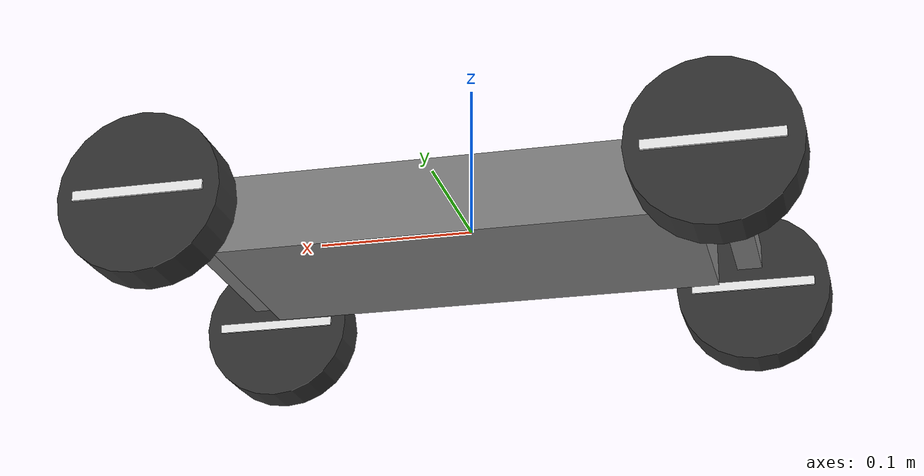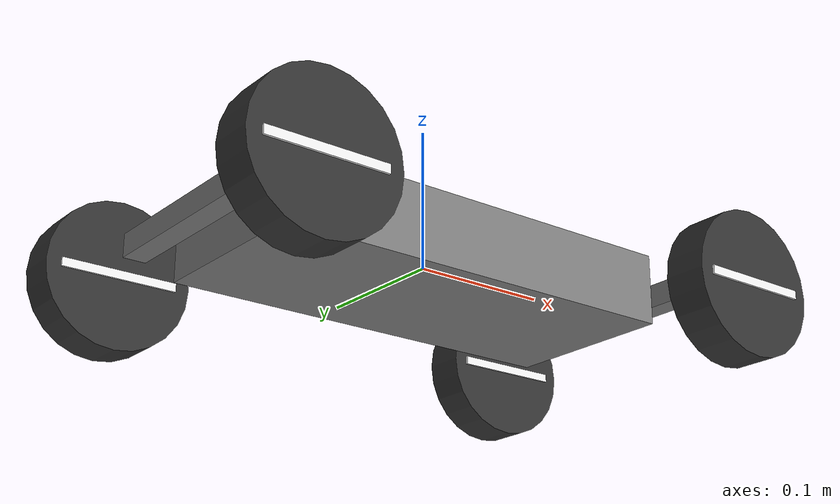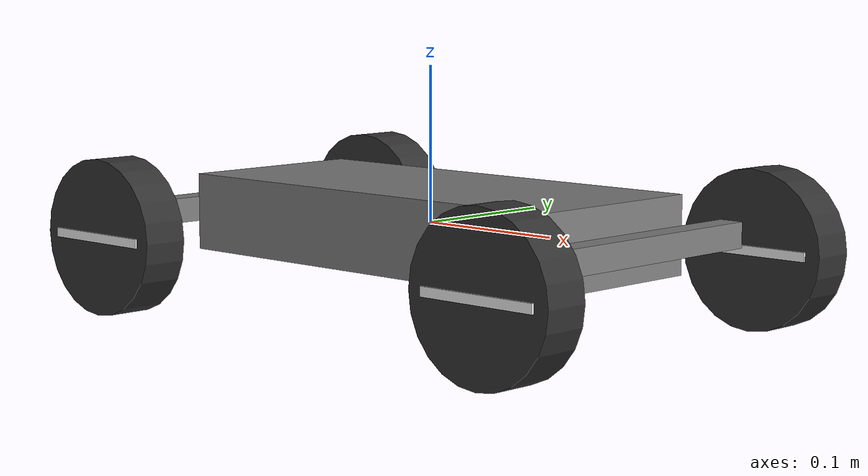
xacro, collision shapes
<?xml version="1.0"?>
<robot name="carbot" xmlns:xacro="http://wiki.ros.org/xacro">

    <xacro:property name="car_length" value="0.3"/>
    <xacro:property name="car_width" value="0.13"/>
    <xacro:property name="car_height" value="0.05"/>
    <xacro:property name="chassis_mass" value="2.0"/>

    <!-- turning to left -->
    <xacro:property name="min_steer" value="-0.52"/>
    <!-- turning to right -->
    <xacro:property name="max_steer" value="0.52"/>

    <xacro:property name="front_axle_width" value="0.18"/>
    <xacro:property name="back_axle_width" value="0.17"/>
    <xacro:property name="axle_mass" value="0.1"/>

    <xacro:property name="wheel_width" value="0.03"/>
    <xacro:property name="wheel_radius" value="0.051"/>
    <xacro:property name="wheel_gape" value="0.02"/>
    <xacro:property name="wheel_mass" value="0.2"/>
    <!-- TODO(lwalter) pass these in as args -->

    <xacro:include filename="$(find carbot_description)/urdf/carbot.gazebo"/>

    <!-- don't use macro names that are the same as other key names
      like 'box', 'cylinder', etc. otherwise get Invalid parameter "size"
    -->
    <xacro:macro name="block" params="name length width height mass r:=0.5 b:=0.5 g:=0.5">
        <link name="${name}">
            <visual>
                <origin xyz="0 0 0" rpy="0 0 0"/>
                <geometry>
                    <box size="${length} ${width} ${height}"/>
                </geometry>
                <material name="${name}_gray">
                    <color rgba="${r} ${g} ${b} 1"/>
                </material>
            </visual>
            <collision>
                <origin xyz="0 0 0" rpy="0 0 0"/>
                <geometry>
                    <box size="${length} ${width} ${height}"/>
                </geometry>
            </collision>
            <inertial>
                <origin xyz="0 0 0" rpy="0 0 0"/>
                <mass value="${mass}"/>
                <inertia
                        ixx="${mass / 12.0 * (width * width + height * height)}" ixy="0.0" ixz="0.0"
                        iyy="${mass / 12.0 * (length * length + height * height)}" iyz="0.0"
                        izz="${mass / 12.0 * (length * length + width * width)}"/>
            </inertial>
        </link>
    </xacro:macro>

    <!-- a wheel that rotates around the y axis, rolls forward toward the x axis -->
    <!--origin xyz="${length/2} ${width/2} ${height/2}" /-->
    <xacro:macro name="wheel" params="name width radius mass">
        <link name="${name}">
            <visual>
                <origin xyz="0 0 0" rpy="${pi/2} 0 0"/>
                <geometry>
                    <cylinder length="${width}" radius="${radius}"/>
                </geometry>
                <material name="${name}_black">
                    <color rgba="0.2 0.2 0.2 1"/>
                </material>
            </visual>
            <collision>
                <origin xyz="0 0 0" rpy="${pi/2} 0 0"/>
                <geometry>
                    <cylinder length="${width}" radius="${radius}"/>
                </geometry>
            </collision>
            <inertial>
                <origin xyz="0 0 0" rpy="${pi/2} 0 0"/>
                <mass value="${mass}"/>
                <inertia
                        ixx="${mass / 12.0 * (3 * radius * radius + width * width)}" ixy="0.0" ixz="0.0"
                        iyy="${mass / 12.0 * (3 * radius * radius + width * width)}" iyz="0.0"
                        izz="${mass / 2.0 * (radius * radius)}"/>
            </inertial>
        </link>
    </xacro:macro>

    <xacro:macro name="generic_wheel" params="name parent radius width">

        <xacro:wheel name="wheel_${name}" width="${wheel_width}" radius="${wheel_radius}" mass="${wheel_mass}"/>
        <joint name="wheel_${name}_axle" type="continuous">
            <parent link="${parent}"/>
            <child link="wheel_${name}"/>
            <origin xyz="0 0 ${-car_height/4}" rpy="0 0 0"/>
            <axis xyz="0 1 0"/>
            <limit effort="10.0" velocity="0.5"/>
        </joint>

        <!-- indicate whether the wheel is spinning -->
        <xacro:block name="wheel_${name}_hubcap" length="${1.6 * wheel_radius}"
                     width="${1.1 * wheel_width}" height="${0.2 * wheel_width}" mass="0.1"
                     r="0.95" g="0.95" b="0.95"/>
        <joint name="wheel_${name}_hubcap_joint" type="fixed">
            <parent link="wheel_${name}"/>
            <child link="wheel_${name}_hubcap"/>
            <origin xyz="0 0 0" rpy="0 0 0"/>
        </joint>

        <transmission name="${name}_tran">
            <type>transmission_interface/SimpleTransmission</type>
            <joint name="wheel_${name}_axle">
                <hardwareInterface>EffortJointInterface</hardwareInterface>
            </joint>
            <actuator name="${name}_motor">
                <hardwareInterface>EffortJointInterface</hardwareInterface>
                <mechanicalReduction>1</mechanicalReduction>
            </actuator>
        </transmission>

        <gazebo reference="wheel_${name}">
            <mu1>800</mu1>
            <mu2>100</mu2>
            <kp value="10000000.0"/>
            <kd value="1.0"/>
        </gazebo>

    </xacro:macro>  <!-- generic wheel -->

    <!-- TODO(lucasw) make a wheel xacro to get common code out of
        fixed_wheel and steered_wheel -->
    <xacro:macro name="fixed_wheel" params="name parent y">
        <xacro:block name="${name}" length="${car_width/8.0}"
                     width="${car_width/8.0}" height="${car_width/8.0}" mass="0.1"/>
        <joint name="${name}_axle" type="fixed">
            <parent link="${parent}"/>
            <child link="${name}"/>
            <origin xyz="0 ${y} 0" rpy="0 0 0"/>
        </joint>

        <xacro:generic_wheel name="${name}" parent="${name}"
                             radius="${wheel_radius}" width="${wheel_width}"/>
    </xacro:macro>

    <xacro:macro name="steered_wheel" params="name parent y">
        <xacro:block name="${name}_steer" length="${car_width/8.0}"
                     width="${car_width/8.0}" height="${car_width/8.0}" mass="0.1"/>
        <joint name="${name}_steer_joint" type="revolute">
            <parent link="${parent}"/>
            <child link="${name}_steer"/>
            <origin xyz="0 ${y} 0" rpy="0 0 0"/>
            <origin xyz="0 ${y} 0" rpy="0 0 0"/>
            <axis xyz="0 0 -1"/>
            <limit effort="1.0" upper="${max_steer}" lower="${min_steer}" velocity="0.01"/>
        </joint>

        <transmission name="${name}_steer_tran">
            <type>transmission_interface/SimpleTransmission</type>
            <joint name="${name}_steer_joint">
                <hardwareInterface>EffortJointInterface</hardwareInterface>
            </joint>
            <actuator name="${name}_steer_motor">
                <hardwareInterface>EffortJointInterface</hardwareInterface>
                <mechanicalReduction>1</mechanicalReduction>
            </actuator>
        </transmission>

        <xacro:generic_wheel name="${name}" parent="${name}_steer"
                             radius="${wheel_radius}" width="${wheel_width}"/>
    </xacro:macro>

    <link name="base_link"/>
    <xacro:block name="chassis_link" length="${car_length}"
                 width="${car_width}" height="${car_height}" mass="${chassis_mass}"/>
    <joint name="chassis_joint" type="fixed">
        <parent link="base_link"/>
        <child link="chassis_link"/>
        <origin xyz="0 0 0" rpy="0 0 0"/>
    </joint>
    <!-- virtual joint that allows visualization of where the
      base_link is steering (given the lead steer joint)
      -->
    <link name="base_steer"/>
    <joint name="base_steer_joint" type="revolute">
        <!--parent link="base_link"/-->
        <parent link="base_link"/>
        <child link="base_steer"/>
        <origin xyz="0 0 0" rpy="0 0 0"/>
        <axis xyz="0 0 -1"/>
        <limit effort="10000.0" upper="${max_steer}" lower="${min_steer}" velocity="0.01"/>
    </joint>

    <!-- every link has to have inertia in order for it to work in gazebo
      even if it just connects two inertia links- without it the child link
      that doesn't have inertia won't appear.
      -->
    <xacro:block name="front_axle" length="${car_width/8.0}"
                 width="${front_axle_width}" height="${car_width/8.0}" mass="${axle_mass}"/>
    <joint name="front_axle_joint" type="fixed">
        <parent link="base_link"/>
        <child link="front_axle"/>
        <origin xyz="${0.5625 * car_length} 0 0" rpy="0 0 0"/>
    </joint>

    <link name="lead_steer"/>
    <joint name="lead_steer_joint" type="revolute">
        <!--parent link="base_link"/-->
        <parent link="front_axle"/>
        <child link="lead_steer"/>
        <origin xyz="0 0 0" rpy="0 0 0"/>
        <axis xyz="0 0 -1"/>
        <limit effort="10000.0" upper="${max_steer}" lower="${min_steer}" velocity="0.01"/>
    </joint>
    <!-- virtual wheel that will represent the desired velocity
      of the vehicle (so need radius encoded in it also) -->
    <link name="wheel_lead"/>
    <joint name="wheel_lead_axle" type="continuous">
        <parent link="lead_steer"/>
        <child link="wheel_lead"/>
        <origin xyz="0 0 0" rpy="0 0 0"/>
        <axis xyz="0 1 0"/>
        <limit effort="1000.0" velocity="0.5"/>
    </joint>

    <xacro:steered_wheel name="front_left" parent="front_axle"
                         y="${front_axle_width/2 + wheel_width/2 + wheel_gape}"/>
    <xacro:steered_wheel name="front_right" parent="front_axle"
                         y="${-front_axle_width/2 - wheel_width/2 - wheel_gape}"/>

    <xacro:block name="back_axle" length="${car_width/8.0}"
                 width="${back_axle_width}" height="${car_width/8.0}" mass="${axle_mass}"/>
    <joint name="back_axle_joint" type="fixed">
        <parent link="base_link"/>
        <child link="back_axle"/>
        <origin xyz="${-0.5625 * car_length} 0 0" rpy="0 0 0"/>
    </joint>

    <xacro:fixed_wheel name="back_left" parent="back_axle"
                       y="${back_axle_width/2 + wheel_width/2 + wheel_gape}"/>
    <xacro:fixed_wheel name="back_right" parent="back_axle"
                       y="${-back_axle_width/2 - wheel_width/2 - wheel_gape}"/>

    <joint name="scan_joint" type="fixed">
        <parent link="base_link"/>
        <child link="base_scan"/>
        <origin xyz="0 0.0 ${car_height}" rpy="0 0 0"/>
    </joint>
    <link name="base_scan">
        <visual>
            <origin xyz="0 0 0.0" rpy="0 0 0"/>
            <geometry>
                <mesh filename="package://carbot_description/meshes/lds.stl" scale="0.001 0.001 0.001"/>
            </geometry>
            <material name="dark"/>
        </visual>
        <inertial>
            <mass value="0.114"/>
            <origin xyz="0 0 0"/>
            <inertia ixx="0.001" ixy="0.0" ixz="0.0" iyy="0.001" iyz="0.0" izz="0.001"/>
        </inertial>
    </link>

    <joint name="camera_joint" type="fixed">
        <origin xyz="${car_width/2} 0 ${car_height}" rpy="0 0 0"/>
        <parent link="base_link"/>
        <child link="camera_link"/>
    </joint>
    <link name="camera_link">
    </link>
    <joint name="camera_rgb_joint" type="fixed">
        <origin xyz="${car_width/2} 0 ${car_height}" rpy="0 0 0"/>
        <parent link="camera_link"/>
        <child link="camera_rgb_frame"/>
    </joint>
    <link name="camera_rgb_frame"/>
    <joint name="camera_rgb_optical_joint" type="fixed">
        <origin xyz="${car_width/2} 0 ${car_height}" rpy="-1.57 0 -1.57"/>
        <parent link="camera_rgb_frame"/>
        <child link="camera_rgb_optical_frame"/>
    </joint>
    <link name="camera_rgb_optical_frame"/>

</robot>
